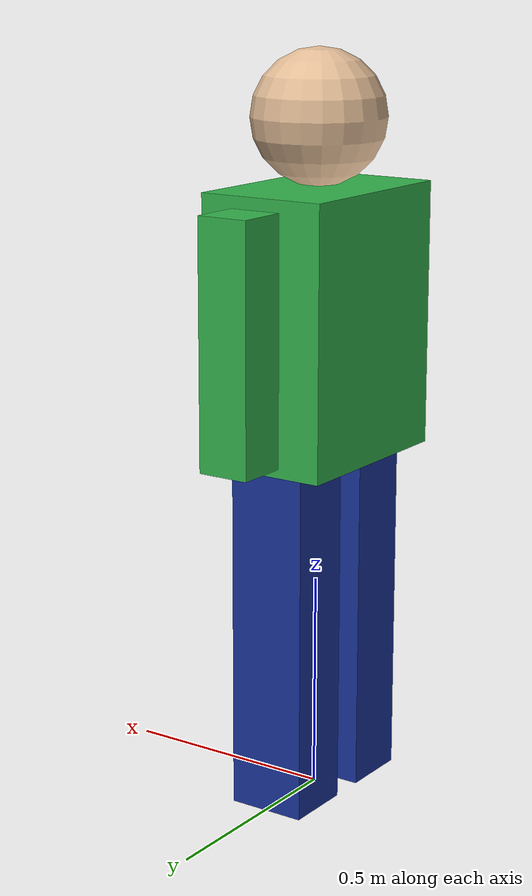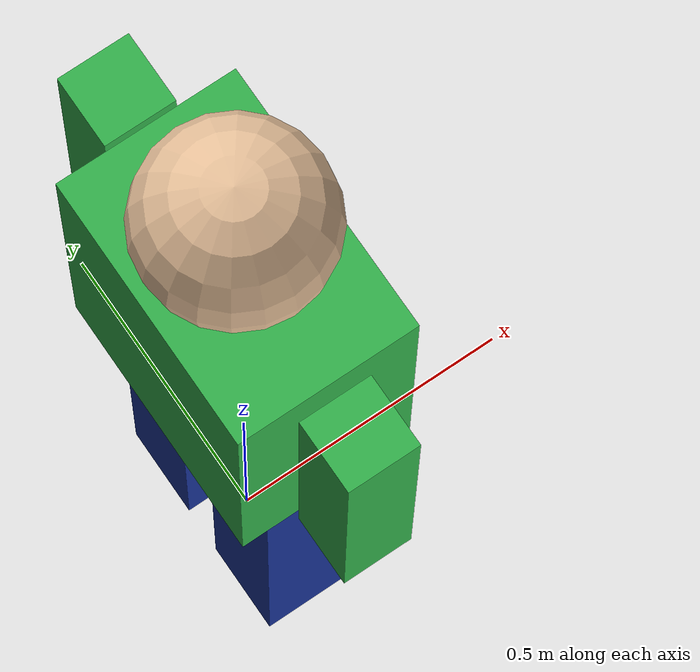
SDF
<?xml version="1.0"?>
<sdf version="1.8">
  <model name="human">
    <static>false</static>
    <link name="human_link">
      <inertial>
        <pose>0 0 0.9 0 0 0</pose>
        <mass>70.0</mass>
        <inertia>
          <ixx>15.0</ixx>
          <ixy>0.0</ixy>
          <ixz>0.0</ixz>
          <iyy>15.0</iyy>
          <iyz>0.0</iyz>
          <izz>4.0</izz>
        </inertia>
      </inertial>

      <!-- Head Visual & Collision -->
      <visual name="head_visual">
        <pose>0 0 1.55 0 0 0</pose>
        <geometry>
          <sphere>
            <radius>0.15</radius>
          </sphere>
        </geometry>
        <material>
          <ambient>0.9 0.75 0.6 1.0</ambient>
          <diffuse>0.9 0.75 0.6 1.0</diffuse>
          <specular>0.1 0.1 0.1 1.0</specular>
        </material>
      </visual>
      <collision name="head_collision">
        <pose>0 0 1.55 0 0 0</pose>
        <geometry>
          <sphere>
            <radius>0.15</radius>
          </sphere>
        </geometry>
      </collision>

      <!-- Torso Visual & Collision -->
      <visual name="torso_visual">
        <pose>0 0 1.1 0 0 0</pose>
        <geometry>
          <box>
            <size>0.3 0.45 0.6</size>
          </box>
        </geometry>
        <material>
          <ambient>0.2 0.7 0.3 1.0</ambient>
          <diffuse>0.2 0.7 0.3 1.0</diffuse>
          <specular>0.1 0.1 0.1 1.0</specular>
        </material>
      </visual>
      <collision name="torso_collision">
        <pose>0 0 1.1 0 0 0</pose>
        <geometry>
          <box>
            <size>0.3 0.45 0.6</size>
          </box>
        </geometry>
      </collision>

      <!-- Left Arm Visual & Collision -->
      <visual name="left_arm_visual">
        <pose>0 0.3 1.1 0 0 0</pose>
        <geometry>
          <box>
            <size>0.12 0.12 0.55</size>
          </box>
        </geometry>
        <material>
          <ambient>0.2 0.7 0.3 1.0</ambient>
          <diffuse>0.2 0.7 0.3 1.0</diffuse>
          <specular>0.1 0.1 0.1 1.0</specular>
        </material>
      </visual>
      <collision name="left_arm_collision">
        <pose>0 0.3 1.1 0 0 0</pose>
        <geometry>
          <box>
            <size>0.12 0.12 0.55</size>
          </box>
        </geometry>
      </collision>

      <!-- Right Arm Visual & Collision -->
      <visual name="right_arm_visual">
        <pose>0 -0.3 1.1 0 0 0</pose>
        <geometry>
          <box>
            <size>0.12 0.12 0.55</size>
          </box>
        </geometry>
        <material>
          <ambient>0.2 0.7 0.3 1.0</ambient>
          <diffuse>0.2 0.7 0.3 1.0</diffuse>
          <specular>0.1 0.1 0.1 1.0</specular>
        </material>
      </visual>
      <collision name="right_arm_collision">
        <pose>0 -0.3 1.1 0 0 0</pose>
        <geometry>
          <box>
            <size>0.12 0.12 0.55</size>
          </box>
        </geometry>
      </collision>

      <!-- Left Leg Visual & Collision -->
      <visual name="left_leg_visual">
        <pose>0 0.12 0.4 0 0 0</pose>
        <geometry>
          <box>
            <size>0.18 0.16 0.8</size>
          </box>
        </geometry>
        <material>
          <ambient>0.1 0.2 0.6 1.0</ambient>
          <diffuse>0.1 0.2 0.6 1.0</diffuse>
          <specular>0.1 0.1 0.1 1.0</specular>
        </material>
      </visual>
      <collision name="left_leg_collision">
        <pose>0 0.12 0.4 0 0 0</pose>
        <geometry>
          <box>
            <size>0.18 0.16 0.8</size>
          </box>
        </geometry>
      </collision>

      <!-- Right Leg Visual & Collision -->
      <visual name="right_leg_visual">
        <pose>0 -0.12 0.4 0 0 0</pose>
        <geometry>
          <box>
            <size>0.18 0.16 0.8</size>
          </box>
        </geometry>
        <material>
          <ambient>0.1 0.2 0.6 1.0</ambient>
          <diffuse>0.1 0.2 0.6 1.0</diffuse>
          <specular>0.1 0.1 0.1 1.0</specular>
        </material>
      </visual>
      <collision name="right_leg_collision">
        <pose>0 -0.12 0.4 0 0 0</pose>
        <geometry>
          <box>
            <size>0.18 0.16 0.8</size>
          </box>
        </geometry>
      </collision>
    </link>
  </model>
</sdf>
